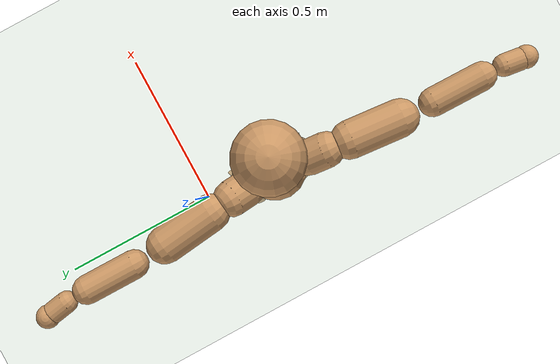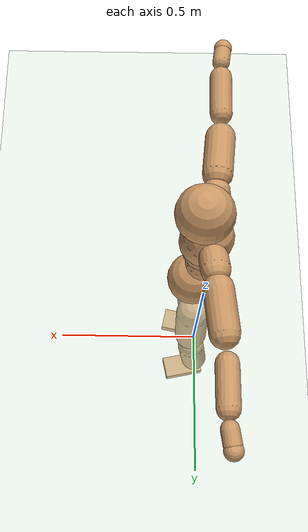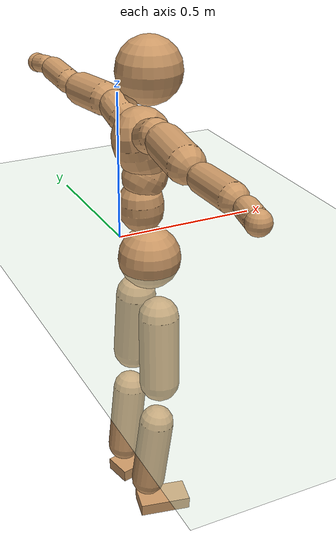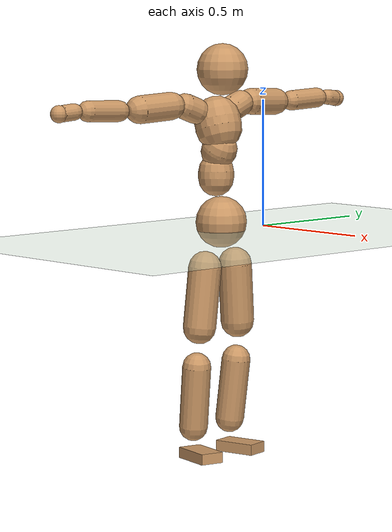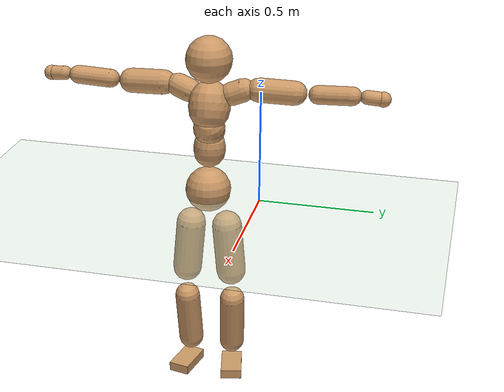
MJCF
<mujoco model="humanoid">
  <compiler coordinate="local"/>
  <default>
    <joint damping="0.0" armature="0.01" stiffness="0.0" limited="true"/>
    <geom conaffinity="1" condim="3" contype="7" margin="0.001" rgba="0.8 0.6 .4 1"/>
  </default>
  <asset>
    <texture type="skybox" builtin="gradient" rgb1=".4 .5 .6" rgb2="0 0 0" width="100" height="100"/>
    <texture builtin="flat" height="1278" mark="cross" markrgb="1 1 1" name="texgeom" random="0.01" rgb1="0.8 0.6 0.4" rgb2="0.8 0.6 0.4" type="cube" width="127"/>
    <texture builtin="checker" height="100" name="texplane" rgb1="0 0 0" rgb2="0.8 0.8 0.8" type="2d" width="100"/>
    <material name="MatPlane" reflectance="0.5" shininess="1" specular="1" texrepeat="60 60" texture="texplane"/>
    <material name="geom" texture="texgeom" texuniform="true"/>
  </asset>
  <worldbody>
    <light cutoff="100" diffuse="1 1 1" dir="-0 0 -1.3" directional="true" exponent="1" pos="0 0 1.3" specular=".1 .1 .1"/>
    <geom conaffinity="1" condim="3" name="floor" pos="0 0 0" rgba="0.8 0.9 0.8 1" size="100 100 .2" type="plane" material="MatPlane"/>
    <body name="Pelvis" pos="0.0004 -0.2315 0.0318">
      <freejoint name="Pelvis"/>
      <geom type="sphere" contype="1" conaffinity="1" density="500" size="0.1009" pos="0.0000 0.0000 0.0000" name="Pelvis"/>
      <body name="L_Hip" pos="-0.0073 0.0773 -0.0972">
        <joint name="L_Hip_x" type="hinge" pos="0 0 0" axis="1 0 0" stiffness="800" damping="80" armature="0.02" range="-180.0000 180.0000"/>
        <joint name="L_Hip_y" type="hinge" pos="0 0 0" axis="0 1 0" stiffness="800" damping="80" armature="0.02" range="-180.0000 180.0000"/>
        <joint name="L_Hip_z" type="hinge" pos="0 0 0" axis="0 0 1" stiffness="800" damping="80" armature="0.02" range="-180.0000 180.0000"/>
        <geom type="capsule" contype="1" conaffinity="1" density="500" fromto="-0.0018 0.0063 -0.0764 -0.0074 0.0251 -0.3057" size="0.0662" name="L_Hip"/>
        <body name="L_Knee" pos="-0.0092 0.0314 -0.3821">
          <joint name="L_Knee_x" type="hinge" pos="0 0 0" axis="1 0 0" stiffness="800" damping="80" armature="0.02" range="-180.0000 180.0000"/>
          <joint name="L_Knee_y" type="hinge" pos="0 0 0" axis="0 1 0" stiffness="800" damping="80" armature="0.02" range="-180.0000 180.0000"/>
          <joint name="L_Knee_z" type="hinge" pos="0 0 0" axis="0 0 1" stiffness="800" damping="80" armature="0.02" range="-180.0000 180.0000"/>
          <geom type="capsule" contype="1" conaffinity="1" density="500" fromto="-0.0096 -0.0024 -0.0804 -0.0385 -0.0095 -0.3215" size="0.0568" name="L_Knee"/>
          <body name="L_Ankle" pos="-0.0481 -0.0118 -0.4019">
            <joint name="L_Ankle_x" type="hinge" pos="0 0 0" axis="1 0 0" stiffness="800" damping="80" armature="0.02" range="-180.0000 180.0000"/>
            <joint name="L_Ankle_y" type="hinge" pos="0 0 0" axis="0 1 0" stiffness="800" damping="80" armature="0.02" range="-180.0000 180.0000"/>
            <joint name="L_Ankle_z" type="hinge" pos="0 0 0" axis="0 0 1" stiffness="800" damping="80" armature="0.02" range="-180.0000 180.0000"/>
            <geom type="box" contype="1" conaffinity="1" density="500" pos="0.0594 0.0125 -0.0284" size="0.0848 0.0474 0.0213" quat="0.9946 0.0000 0.0000 0.1036" name="L_Ankle"/>
            <body name="L_Toe" pos="0.1188 0.025 -0.0569">
              <joint name="L_Toe_x" type="hinge" pos="0 0 0" axis="1 0 0" stiffness="500" damping="50" armature="0.02" range="-180.0000 180.0000"/>
              <joint name="L_Toe_y" type="hinge" pos="0 0 0" axis="0 1 0" stiffness="500" damping="50" armature="0.02" range="-180.0000 180.0000"/>
              <joint name="L_Toe_z" type="hinge" pos="0 0 0" axis="0 0 1" stiffness="500" damping="50" armature="0.02" range="-180.0000 180.0000"/>
              <geom type="box" contype="1" conaffinity="1" density="500" pos="0.0000 0.0000 0.0287" size="0.0009 0.0024 0.0011" quat="0.9939 0.0000 0.0000 0.1098" name="L_Toe"/>
            </body>
          </body>
        </body>
      </body>
      <body name="R_Hip" pos="-0.0041 -0.074 -0.0967">
        <joint name="R_Hip_x" type="hinge" pos="0 0 0" axis="1 0 0" stiffness="800" damping="80" armature="0.02" range="-180.0000 180.0000"/>
        <joint name="R_Hip_y" type="hinge" pos="0 0 0" axis="0 1 0" stiffness="800" damping="80" armature="0.02" range="-180.0000 180.0000"/>
        <joint name="R_Hip_z" type="hinge" pos="0 0 0" axis="0 0 1" stiffness="800" damping="80" armature="0.02" range="-180.0000 180.0000"/>
        <geom type="capsule" contype="1" conaffinity="1" density="500" fromto="-0.0024 -0.0075 -0.0779 -0.0095 -0.0299 -0.3115" size="0.0654" name="R_Hip"/>
        <body name="R_Knee" pos="-0.0119 -0.0374 -0.3894">
          <joint name="R_Knee_x" type="hinge" pos="0 0 0" axis="1 0 0" stiffness="800" damping="80" armature="0.02" range="-180.0000 180.0000"/>
          <joint name="R_Knee_y" type="hinge" pos="0 0 0" axis="0 1 0" stiffness="800" damping="80" armature="0.02" range="-180.0000 180.0000"/>
          <joint name="R_Knee_z" type="hinge" pos="0 0 0" axis="0 0 1" stiffness="800" damping="80" armature="0.02" range="-180.0000 180.0000"/>
          <geom type="capsule" contype="1" conaffinity="1" density="500" fromto="-0.0094 0.0029 -0.0806 -0.0375 0.0116 -0.3222" size="0.0569" name="R_Knee"/>
          <body name="R_Ankle" pos="-0.0468 0.0145 -0.4028">
            <joint name="R_Ankle_x" type="hinge" pos="0 0 0" axis="1 0 0" stiffness="800" damping="80" armature="0.02" range="-180.0000 180.0000"/>
            <joint name="R_Ankle_y" type="hinge" pos="0 0 0" axis="0 1 0" stiffness="800" damping="80" armature="0.02" range="-180.0000 180.0000"/>
            <joint name="R_Ankle_z" type="hinge" pos="0 0 0" axis="0 0 1" stiffness="800" damping="80" armature="0.02" range="-180.0000 180.0000"/>
            <geom type="box" contype="1" conaffinity="1" density="500" pos="0.0612 -0.0126 -0.0245" size="0.0861 0.0472 0.0211" quat="0.9949 0.0000 0.0000 -0.1013" name="R_Ankle"/>
            <body name="R_Toe" pos="0.1225 -0.0252 -0.049">
              <joint name="R_Toe_x" type="hinge" pos="0 0 0" axis="1 0 0" stiffness="500" damping="50" armature="0.02" range="-180.0000 180.0000"/>
              <joint name="R_Toe_y" type="hinge" pos="0 0 0" axis="0 1 0" stiffness="500" damping="50" armature="0.02" range="-180.0000 180.0000"/>
              <joint name="R_Toe_z" type="hinge" pos="0 0 0" axis="0 0 1" stiffness="500" damping="50" armature="0.02" range="-180.0000 180.0000"/>
              <geom type="box" contype="1" conaffinity="1" density="500" pos="0.0000 0.0000 0.0265" size="0.0009 0.0024 0.0012" quat="0.9958 0.0000 0.0000 -0.0920" name="R_Toe"/>
            </body>
          </body>
        </body>
      </body>
      <body name="Torso" pos="-0.0263 -0.0027 0.1127">
        <joint name="Torso_x" type="hinge" pos="0 0 0" axis="1 0 0" stiffness="1000" damping="100" armature="0.02" range="-180.0000 180.0000"/>
        <joint name="Torso_y" type="hinge" pos="0 0 0" axis="0 1 0" stiffness="1000" damping="100" armature="0.02" range="-180.0000 180.0000"/>
        <joint name="Torso_z" type="hinge" pos="0 0 0" axis="0 0 1" stiffness="1000" damping="100" armature="0.02" range="-180.0000 180.0000"/>
        <geom type="capsule" contype="1" conaffinity="1" density="500" fromto="-0.0023 0.0022 0.0844 -0.0015 0.0015 0.0563" size="0.069936" name="Torso"/>
        <body name="Spine" pos="-0.0039 0.0037 0.1407">
          <joint name="Spine_x" type="hinge" pos="0 0 0" axis="1 0 0" stiffness="1000" damping="100" armature="0.02" range="-180.0000 180.0000"/>
          <joint name="Spine_y" type="hinge" pos="0 0 0" axis="0 1 0" stiffness="1000" damping="100" armature="0.02" range="-180.0000 180.0000"/>
          <joint name="Spine_z" type="hinge" pos="0 0 0" axis="0 0 1" stiffness="1000" damping="100" armature="0.02" range="-180.0000 180.0000"/>
          <geom type="capsule" contype="1" conaffinity="1" density="500" fromto="0.0198 0.0008 0.0319 0.0132 0.0005 0.0212" size="0.069564" name="Spine"/>
          <body name="Chest" pos="0.033 0.0013 0.0531">
            <joint name="Chest_x" type="hinge" pos="0 0 0" axis="1 0 0" stiffness="1000" damping="100" armature="0.02" range="-180.0000 180.0000"/>
            <joint name="Chest_y" type="hinge" pos="0 0 0" axis="0 1 0" stiffness="1000" damping="100" armature="0.02" range="-180.0000 180.0000"/>
            <joint name="Chest_z" type="hinge" pos="0 0 0" axis="0 0 1" stiffness="1000" damping="100" armature="0.02" range="-180.0000 180.0000"/>
            <geom type="capsule" contype="1" conaffinity="1" density="500" fromto="-0.0282 -0.0005 0.0941 -0.0188 -0.0004 0.0627" size="0.091791" name="Chest"/>
            <body name="Neck" pos="-0.0547 -0.0011 0.2231">
              <joint name="Neck_x" type="hinge" pos="0 0 0" axis="1 0 0" stiffness="500" damping="50" armature="0.02" range="-180.0000 180.0000"/>
              <joint name="Neck_y" type="hinge" pos="0 0 0" axis="0 1 0" stiffness="500" damping="50" armature="0.02" range="-180.0000 180.0000"/>
              <joint name="Neck_z" type="hinge" pos="0 0 0" axis="0 0 1" stiffness="500" damping="50" armature="0.02" range="-180.0000 180.0000"/>
              <geom type="capsule" contype="1" conaffinity="1" density="500" fromto="0.0106 0.0008 0.0132 0.0424 0.0033 0.0529" size="0.03906" name="Neck"/>
              <body name="Head" pos="0.053 0.0041 0.0661">
                <joint name="Head_x" type="hinge" pos="0 0 0" axis="1 0 0" stiffness="500" damping="50" armature="0.02" range="-180.0000 180.0000"/>
                <joint name="Head_y" type="hinge" pos="0 0 0" axis="0 1 0" stiffness="500" damping="50" armature="0.02" range="-180.0000 180.0000"/>
                <joint name="Head_z" type="hinge" pos="0 0 0" axis="0 0 1" stiffness="500" damping="50" armature="0.02" range="-180.0000 180.0000"/>
                <geom type="sphere" contype="1" conaffinity="1" density="500" size="0.1008" pos="0.0000 0.0000 0.0000" name="Head"/>
              </body>
            </body>
            <body name="L_Thorax" pos="-0.04 0.0757 0.1247">
              <joint name="L_Thorax_x" type="hinge" pos="0 0 0" axis="1 0 0" stiffness="500" damping="50" armature="0.02" range="-180.0000 180.0000"/>
              <joint name="L_Thorax_y" type="hinge" pos="0 0 0" axis="0 1 0" stiffness="500" damping="50" armature="0.02" range="-180.0000 180.0000"/>
              <joint name="L_Thorax_z" type="hinge" pos="0 0 0" axis="0 0 1" stiffness="500" damping="50" armature="0.02" range="-180.0000 180.0000"/>
              <geom type="capsule" contype="1" conaffinity="1" density="500" fromto="-0.0014 0.0166 0.0064 -0.0057 0.0662 0.0254" size="0.0514" name="L_Thorax"/>
              <body name="L_Shoulder" pos="-0.0071 0.0828 0.0318">
                <joint name="L_Shoulder_x" type="hinge" pos="0 0 0" axis="1 0 0" stiffness="500" damping="50" armature="0.02" range="-720.0000 720.0000"/>
                <joint name="L_Shoulder_y" type="hinge" pos="0 0 0" axis="0 1 0" stiffness="500" damping="50" armature="0.02" range="-720.0000 720.0000"/>
                <joint name="L_Shoulder_z" type="hinge" pos="0 0 0" axis="0 0 1" stiffness="500" damping="50" armature="0.02" range="-720.0000 720.0000"/>
                <geom type="capsule" contype="1" conaffinity="1" density="500" fromto="-0.0058 0.0505 -0.0023 -0.0233 0.2018 -0.0093" size="0.0529" name="L_Shoulder"/>
                <body name="L_Elbow" pos="-0.0292 0.2523 -0.0117">
                  <joint name="L_Elbow_x" type="hinge" pos="0 0 0" axis="1 0 0" stiffness="500" damping="50" armature="0.02" range="-720.0000 720.0000"/>
                  <joint name="L_Elbow_y" type="hinge" pos="0 0 0" axis="0 1 0" stiffness="500" damping="50" armature="0.02" range="-720.0000 720.0000"/>
                  <joint name="L_Elbow_z" type="hinge" pos="0 0 0" axis="0 0 1" stiffness="500" damping="50" armature="0.02" range="-720.0000 720.0000"/>
                  <geom type="capsule" contype="1" conaffinity="1" density="500" fromto="0.0002 0.0482 0.0019 0.0008 0.1927 0.0075" size="0.0405" name="L_Elbow"/>
                  <body name="L_Wrist" pos="0.001 0.2409 0.0094">
                    <joint name="L_Wrist_x" type="hinge" pos="0 0 0" axis="1 0 0" stiffness="300" damping="30" armature="0.02" range="-180.0000 180.0000"/>
                    <joint name="L_Wrist_y" type="hinge" pos="0 0 0" axis="0 1 0" stiffness="300" damping="30" armature="0.02" range="-180.0000 180.0000"/>
                    <joint name="L_Wrist_z" type="hinge" pos="0 0 0" axis="0 0 1" stiffness="300" damping="30" armature="0.02" range="-180.0000 180.0000"/>
                    <geom type="capsule" contype="1" conaffinity="1" density="500" fromto="-0.0027 0.0162 -0.0020 -0.0108 0.0649 -0.0078" size="0.0309" name="L_Wrist"/>
                    <body name="L_Hand" pos="-0.0135 0.0812 -0.0098">
                      <joint name="L_Hand_x" type="hinge" pos="0 0 0" axis="1 0 0" stiffness="300" damping="30" armature="0.02" range="-180.0000 180.0000"/>
                      <joint name="L_Hand_y" type="hinge" pos="0 0 0" axis="0 1 0" stiffness="300" damping="30" armature="0.02" range="-180.0000 180.0000"/>
                      <joint name="L_Hand_z" type="hinge" pos="0 0 0" axis="0 0 1" stiffness="300" damping="30" armature="0.02" range="-180.0000 180.0000"/>
                      <geom type="sphere" contype="1" conaffinity="1" density="500" size="0.0329" pos="0.0000 0.0000 0.0000" name="L_Hand"/>
                    </body>
                  </body>
                </body>
              </body>
            </body>
            <body name="R_Thorax" pos="-0.0464 -0.0772 0.1226">
              <joint name="R_Thorax_x" type="hinge" pos="0 0 0" axis="1 0 0" stiffness="500" damping="50" armature="0.02" range="-180.0000 180.0000"/>
              <joint name="R_Thorax_y" type="hinge" pos="0 0 0" axis="0 1 0" stiffness="500" damping="50" armature="0.02" range="-180.0000 180.0000"/>
              <joint name="R_Thorax_z" type="hinge" pos="0 0 0" axis="0 0 1" stiffness="500" damping="50" armature="0.02" range="-180.0000 180.0000"/>
              <geom type="capsule" contype="1" conaffinity="1" density="500" fromto="-0.0017 -0.0176 0.0066 -0.0067 -0.0703 0.0266" size="0.0507" name="R_Thorax"/>
              <body name="R_Shoulder" pos="-0.0084 -0.0879 0.0332">
                <joint name="R_Shoulder_x" type="hinge" pos="0 0 0" axis="1 0 0" stiffness="500" damping="50" armature="0.02" range="-720.0000 720.0000"/>
                <joint name="R_Shoulder_y" type="hinge" pos="0 0 0" axis="0 1 0" stiffness="500" damping="50" armature="0.02" range="-720.0000 720.0000"/>
                <joint name="R_Shoulder_z" type="hinge" pos="0 0 0" axis="0 0 1" stiffness="500" damping="50" armature="0.02" range="-720.0000 720.0000"/>
                <geom type="capsule" contype="1" conaffinity="1" density="500" fromto="-0.0046 -0.0500 -0.0028 -0.0184 -0.1999 -0.0112" size="0.0542" name="R_Shoulder"/>
                <body name="R_Elbow" pos="-0.023 -0.2498 -0.014">
                  <joint name="R_Elbow_x" type="hinge" pos="0 0 0" axis="1 0 0" stiffness="500" damping="50" armature="0.02" range="-720.0000 720.0000"/>
                  <joint name="R_Elbow_y" type="hinge" pos="0 0 0" axis="0 1 0" stiffness="500" damping="50" armature="0.02" range="-720.0000 720.0000"/>
                  <joint name="R_Elbow_z" type="hinge" pos="0 0 0" axis="0 0 1" stiffness="500" damping="50" armature="0.02" range="-720.0000 720.0000"/>
                  <geom type="capsule" contype="1" conaffinity="1" density="500" fromto="-0.0006 -0.0500 0.0019 -0.0024 -0.2000 0.0077" size="0.0407" name="R_Elbow"/>
                  <body name="R_Wrist" pos="-0.0029 -0.2501 0.0096">
                    <joint name="R_Wrist_x" type="hinge" pos="0 0 0" axis="1 0 0" stiffness="300" damping="30" armature="0.02" range="-180.0000 180.0000"/>
                    <joint name="R_Wrist_y" type="hinge" pos="0 0 0" axis="0 1 0" stiffness="300" damping="30" armature="0.02" range="-180.0000 180.0000"/>
                    <joint name="R_Wrist_z" type="hinge" pos="0 0 0" axis="0 0 1" stiffness="300" damping="30" armature="0.02" range="-180.0000 180.0000"/>
                    <geom type="capsule" contype="1" conaffinity="1" density="500" fromto="-0.0021 -0.0164 -0.0014 -0.0086 -0.0657 -0.0058" size="0.0317" name="R_Wrist"/>
                    <body name="R_Hand" pos="-0.0107 -0.0821 -0.0072">
                      <joint name="R_Hand_x" type="hinge" pos="0 0 0" axis="1 0 0" stiffness="300" damping="30" armature="0.02" range="-180.0000 180.0000"/>
                      <joint name="R_Hand_y" type="hinge" pos="0 0 0" axis="0 1 0" stiffness="300" damping="30" armature="0.02" range="-180.0000 180.0000"/>
                      <joint name="R_Hand_z" type="hinge" pos="0 0 0" axis="0 0 1" stiffness="300" damping="30" armature="0.02" range="-180.0000 180.0000"/>
                      <geom type="sphere" contype="1" conaffinity="1" density="500" size="0.0331" pos="0.0000 0.0000 0.0000" name="R_Hand"/>
                    </body>
                  </body>
                </body>
              </body>
            </body>
          </body>
        </body>
      </body>
    </body>
  </worldbody>
  <actuator>
    <motor name="L_Hip_x" joint="L_Hip_x" gear="500"/>
    <motor name="L_Hip_y" joint="L_Hip_y" gear="500"/>
    <motor name="L_Hip_z" joint="L_Hip_z" gear="500"/>
    <motor name="L_Knee_x" joint="L_Knee_x" gear="500"/>
    <motor name="L_Knee_y" joint="L_Knee_y" gear="500"/>
    <motor name="L_Knee_z" joint="L_Knee_z" gear="500"/>
    <motor name="L_Ankle_x" joint="L_Ankle_x" gear="500"/>
    <motor name="L_Ankle_y" joint="L_Ankle_y" gear="500"/>
    <motor name="L_Ankle_z" joint="L_Ankle_z" gear="500"/>
    <motor name="L_Toe_x" joint="L_Toe_x" gear="500"/>
    <motor name="L_Toe_y" joint="L_Toe_y" gear="500"/>
    <motor name="L_Toe_z" joint="L_Toe_z" gear="500"/>
    <motor name="R_Hip_x" joint="R_Hip_x" gear="500"/>
    <motor name="R_Hip_y" joint="R_Hip_y" gear="500"/>
    <motor name="R_Hip_z" joint="R_Hip_z" gear="500"/>
    <motor name="R_Knee_x" joint="R_Knee_x" gear="500"/>
    <motor name="R_Knee_y" joint="R_Knee_y" gear="500"/>
    <motor name="R_Knee_z" joint="R_Knee_z" gear="500"/>
    <motor name="R_Ankle_x" joint="R_Ankle_x" gear="500"/>
    <motor name="R_Ankle_y" joint="R_Ankle_y" gear="500"/>
    <motor name="R_Ankle_z" joint="R_Ankle_z" gear="500"/>
    <motor name="R_Toe_x" joint="R_Toe_x" gear="500"/>
    <motor name="R_Toe_y" joint="R_Toe_y" gear="500"/>
    <motor name="R_Toe_z" joint="R_Toe_z" gear="500"/>
    <motor name="Torso_x" joint="Torso_x" gear="500"/>
    <motor name="Torso_y" joint="Torso_y" gear="500"/>
    <motor name="Torso_z" joint="Torso_z" gear="500"/>
    <motor name="Spine_x" joint="Spine_x" gear="500"/>
    <motor name="Spine_y" joint="Spine_y" gear="500"/>
    <motor name="Spine_z" joint="Spine_z" gear="500"/>
    <motor name="Chest_x" joint="Chest_x" gear="500"/>
    <motor name="Chest_y" joint="Chest_y" gear="500"/>
    <motor name="Chest_z" joint="Chest_z" gear="500"/>
    <motor name="Neck_x" joint="Neck_x" gear="500"/>
    <motor name="Neck_y" joint="Neck_y" gear="500"/>
    <motor name="Neck_z" joint="Neck_z" gear="500"/>
    <motor name="Head_x" joint="Head_x" gear="500"/>
    <motor name="Head_y" joint="Head_y" gear="500"/>
    <motor name="Head_z" joint="Head_z" gear="500"/>
    <motor name="L_Thorax_x" joint="L_Thorax_x" gear="500"/>
    <motor name="L_Thorax_y" joint="L_Thorax_y" gear="500"/>
    <motor name="L_Thorax_z" joint="L_Thorax_z" gear="500"/>
    <motor name="L_Shoulder_x" joint="L_Shoulder_x" gear="500"/>
    <motor name="L_Shoulder_y" joint="L_Shoulder_y" gear="500"/>
    <motor name="L_Shoulder_z" joint="L_Shoulder_z" gear="500"/>
    <motor name="L_Elbow_x" joint="L_Elbow_x" gear="500"/>
    <motor name="L_Elbow_y" joint="L_Elbow_y" gear="500"/>
    <motor name="L_Elbow_z" joint="L_Elbow_z" gear="500"/>
    <motor name="L_Wrist_x" joint="L_Wrist_x" gear="500"/>
    <motor name="L_Wrist_y" joint="L_Wrist_y" gear="500"/>
    <motor name="L_Wrist_z" joint="L_Wrist_z" gear="500"/>
    <motor name="L_Hand_x" joint="L_Hand_x" gear="500"/>
    <motor name="L_Hand_y" joint="L_Hand_y" gear="500"/>
    <motor name="L_Hand_z" joint="L_Hand_z" gear="500"/>
    <motor name="R_Thorax_x" joint="R_Thorax_x" gear="500"/>
    <motor name="R_Thorax_y" joint="R_Thorax_y" gear="500"/>
    <motor name="R_Thorax_z" joint="R_Thorax_z" gear="500"/>
    <motor name="R_Shoulder_x" joint="R_Shoulder_x" gear="500"/>
    <motor name="R_Shoulder_y" joint="R_Shoulder_y" gear="500"/>
    <motor name="R_Shoulder_z" joint="R_Shoulder_z" gear="500"/>
    <motor name="R_Elbow_x" joint="R_Elbow_x" gear="500"/>
    <motor name="R_Elbow_y" joint="R_Elbow_y" gear="500"/>
    <motor name="R_Elbow_z" joint="R_Elbow_z" gear="500"/>
    <motor name="R_Wrist_x" joint="R_Wrist_x" gear="500"/>
    <motor name="R_Wrist_y" joint="R_Wrist_y" gear="500"/>
    <motor name="R_Wrist_z" joint="R_Wrist_z" gear="500"/>
    <motor name="R_Hand_x" joint="R_Hand_x" gear="500"/>
    <motor name="R_Hand_y" joint="R_Hand_y" gear="500"/>
    <motor name="R_Hand_z" joint="R_Hand_z" gear="500"/>
  </actuator>
  <contact>
    <exclude body1="Torso" body2="Chest"/>
    <exclude body1="Head" body2="Chest"/>
    <exclude body1="R_Knee" body2="R_Toe"/>
    <exclude body1="R_Knee" body2="L_Ankle"/>
    <exclude body1="R_Knee" body2="L_Toe"/>
    <exclude body1="L_Knee" body2="L_Toe"/>
    <exclude body1="L_Knee" body2="R_Ankle"/>
    <exclude body1="L_Knee" body2="R_Toe"/>
    <exclude body1="L_Shoulder" body2="Chest"/>
    <exclude body1="R_Shoulder" body2="Chest"/>
  </contact>
  <sensor/>
  <size njmax="700" nconmax="700"/>
</mujoco>
